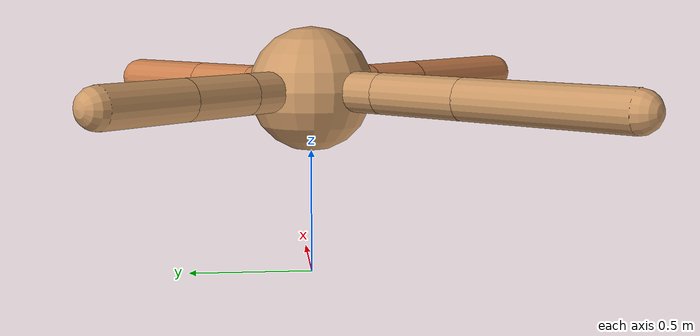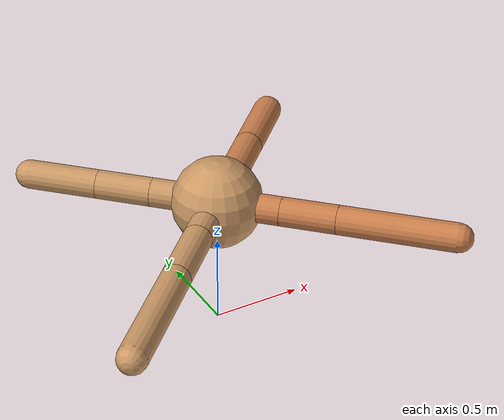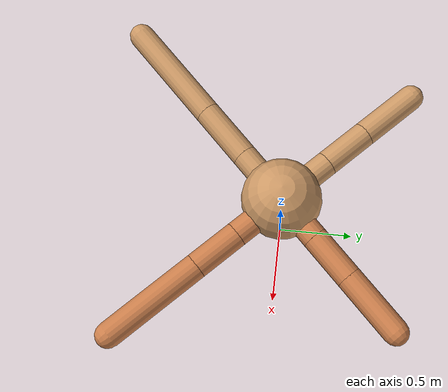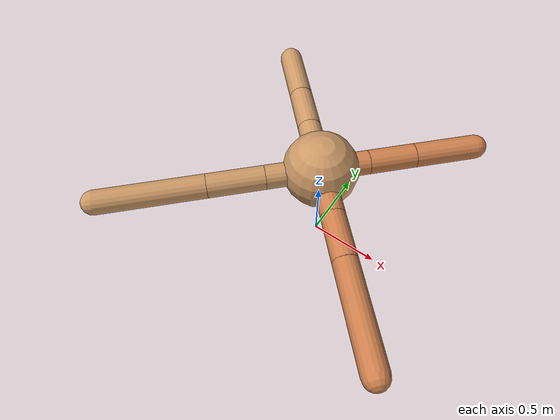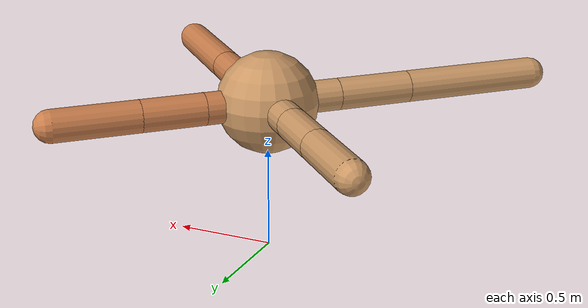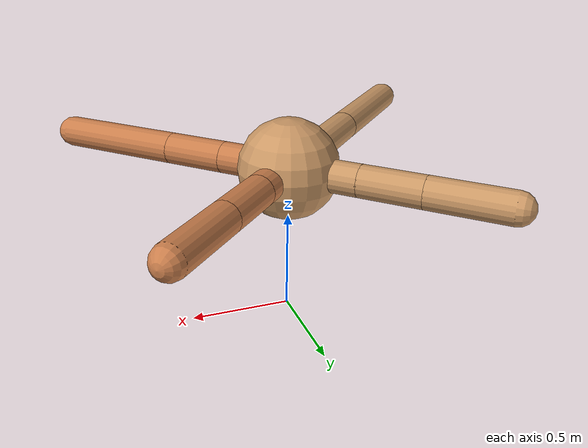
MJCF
<mujoco model="ant">
  <compiler angle="degree" coordinate="local" inertiafromgeom="true" />
  <option integrator="RK4" timestep="0.01" />
  <custom>
    <numeric data="0.0 0.0 0.55 1.0 0.0 0.0 0.0 0.0 1.0 0.0 -1.0 0.0 -1.0 0.0 1.0" name="init_qpos" />
  </custom>
  <default>
    <joint armature="1" damping="1" limited="true" />
    <geom conaffinity="0" condim="3" density="5.0" friction="1.5 0.1 0.1" margin="0.01" rgba="0.8 0.6 0.4 1" />
  </default>
  <worldbody>
    <body name="torso" pos="0 0 0.75">
      <geom name="torso_geom" pos="0 0 0" size="0.25" type="sphere" />

      <body name="front_left_leg" pos="0 0 0">
        <geom fromto="0.0 0.0 0.0 0.224864302858666 0.224864302858666 0.0" name="aux_1_geom" size="0.08" type="capsule" rgba=".8 .5 .3 1" />
        <body name="aux_1" pos="0.224864302858666 0.224864302858666 0.0">
          <joint axis="0 0 1" name="hip_1" pos="0.0 0.0 0.0" range="-40 40" type="hinge" />
          <geom fromto="0.0 0.0 0.0 0.21991385960098853 0.21991385960098853 0.0" name="left_leg_geom" size="0.08" type="capsule" rgba=".8 .5 .3 1" />
          <body pos="0.21991385960098853 0.21991385960098853 0.0" name="front_left_foot">
            <joint axis="-1 1 0" name="ankle_1" pos="0.0 0.0 0.0" range="30 100" type="hinge" />
            <geom fromto="0.0 0.0 0.0 0.29638077835896653 0.29638077835896653 0.0" name="left_ankle_geom" size="0.08" type="capsule" rgba=".8 .5 .3 1" />
          </body>
        </body>
      </body>
      <body name="front_right_leg" pos="0 0 0">
        <geom fromto="0.0 0.0 0.0 -0.2576630583014862 0.2576630583014862 0.0" name="aux_2_geom" size="0.08" type="capsule" />
        <body name="aux_2" pos="-0.2576630583014862 0.2576630583014862 0.0">
          <joint axis="0 0 1" name="hip_2" pos="0.0 0.0 0.0" range="-40 40" type="hinge" />
          <geom fromto="0.0 0.0 0.0 -0.21792755780870687 0.21792755780870687 0.0" name="right_leg_geom" size="0.08" type="capsule" />
          <body pos="-0.21792755780870687 0.21792755780870687 0.0" name="front_right_foot">
            <joint axis="1 1 0" name="ankle_2" pos="0.0 0.0 0.0" range="-100 -30" type="hinge" />
            <geom fromto="0.0 0.0 0.0 -0.2804886852211414 0.2804886852211414 0.0" name="right_ankle_geom" size="0.08" type="capsule" />
          </body>
        </body>
      </body>
      <body name="left_back_leg" pos="0 0 0">
        <geom fromto="0.0 0.0 0.0 -0.2569047871609529 -0.2569047871609529 0.0" name="aux_3_geom" size="0.08" type="capsule" />
        <body name="aux_3" pos="-0.2569047871609529 -0.2569047871609529 0.0">
          <joint axis="0 0 1" name="hip_3" pos="0.0 0.0 0.0" range="-40 40" type="hinge" />
          <geom fromto="0.0 0.0 0.0 -0.2646985193070948 -0.2646985193070948 0.0" name="back_leg_geom" size="0.08" type="capsule" />
          <body pos="-0.2646985193070948 -0.2646985193070948 0.0" name="left_back_foot">
            <joint axis="-1 1 0" name="ankle_3" pos="0.0 0.0 0.0" range="-100 -30" type="hinge" />
            <geom fromto="0.0 0.0 0.0 -0.4951093234143782 -0.4951093234143782 0.0" name="third_ankle_geom" size="0.08" type="capsule" />
          </body>
        </body>
      </body>
      <body name="right_back_leg" pos="0 0 0">
        <geom fromto="0.0 0.0 0.0 0.25124786040639707 -0.25124786040639707 0.0" name="aux_4_geom" size="0.08" type="capsule" rgba=".8 .5 .3 1" />
        <body name="aux_4" pos="0.25124786040639707 -0.25124786040639707 0.0">
          <joint axis="0 0 1" name="hip_4" pos="0.0 0.0 0.0" range="-40 40" type="hinge" />
          <geom fromto="0.0 0.0 0.0 0.21768449274392165 -0.21768449274392165 0.0" name="rightback_leg_geom" size="0.08" type="capsule" rgba=".8 .5 .3 1" />
          <body pos="0.21768449274392165 -0.21768449274392165 0.0" name="right_back_foot">
            <joint axis="1 1 0" name="ankle_4" pos="0.0 0.0 0.0" range="30 100" type="hinge" />
            <geom fromto="0.0 0.0 0.0 0.4558494219360023 -0.4558494219360023 0.0" name="fourth_ankle_geom" size="0.08" type="capsule" rgba=".8 .5 .3 1" />
          </body>
        </body>
      </body>
    </body>
  </worldbody>
  <actuator>
    <motor ctrllimited="true" ctrlrange="-1.0 1.0" joint="hip_4" gear="150" />
    <motor ctrllimited="true" ctrlrange="-1.0 1.0" joint="ankle_4" gear="150" />
    <motor ctrllimited="true" ctrlrange="-1.0 1.0" joint="hip_1" gear="150" />
    <motor ctrllimited="true" ctrlrange="-1.0 1.0" joint="ankle_1" gear="150" />
    <motor ctrllimited="true" ctrlrange="-1.0 1.0" joint="hip_2" gear="150" />
    <motor ctrllimited="true" ctrlrange="-1.0 1.0" joint="ankle_2" gear="150" />
    <motor ctrllimited="true" ctrlrange="-1.0 1.0" joint="hip_3" gear="150" />
    <motor ctrllimited="true" ctrlrange="-1.0 1.0" joint="ankle_3" gear="150" />
  </actuator>
</mujoco>
